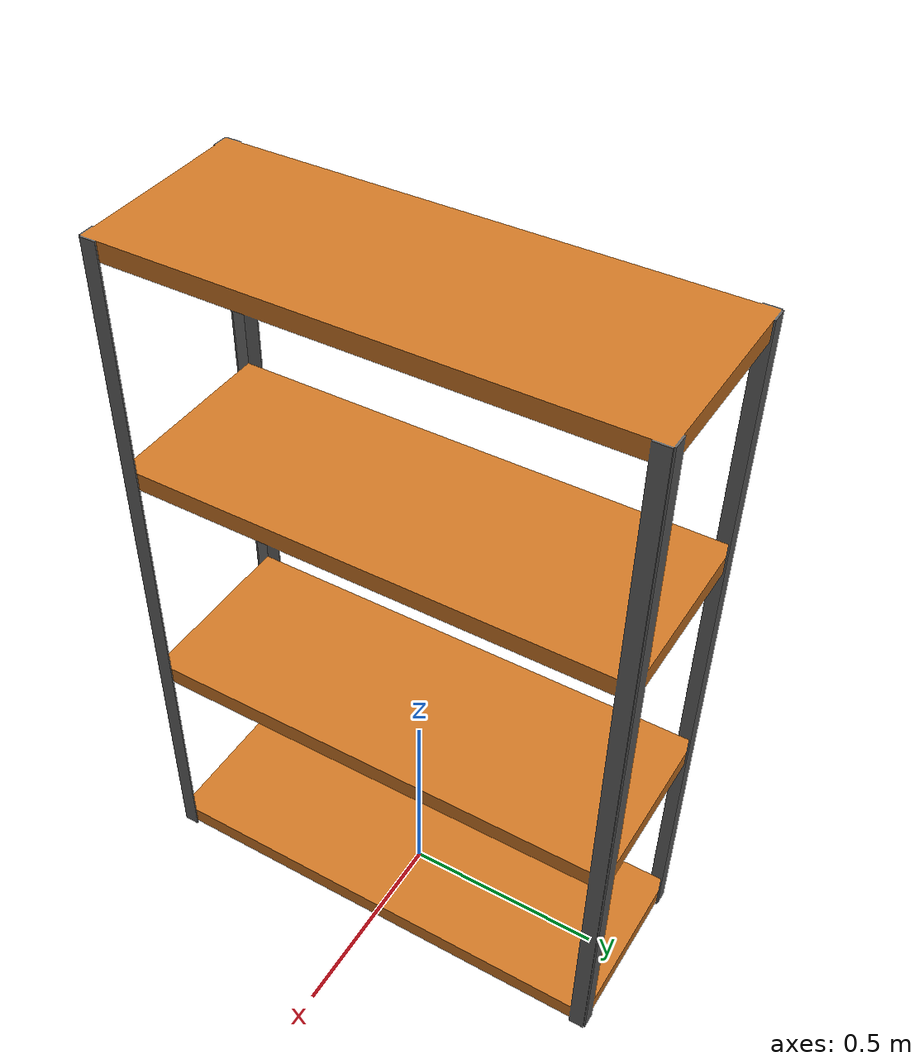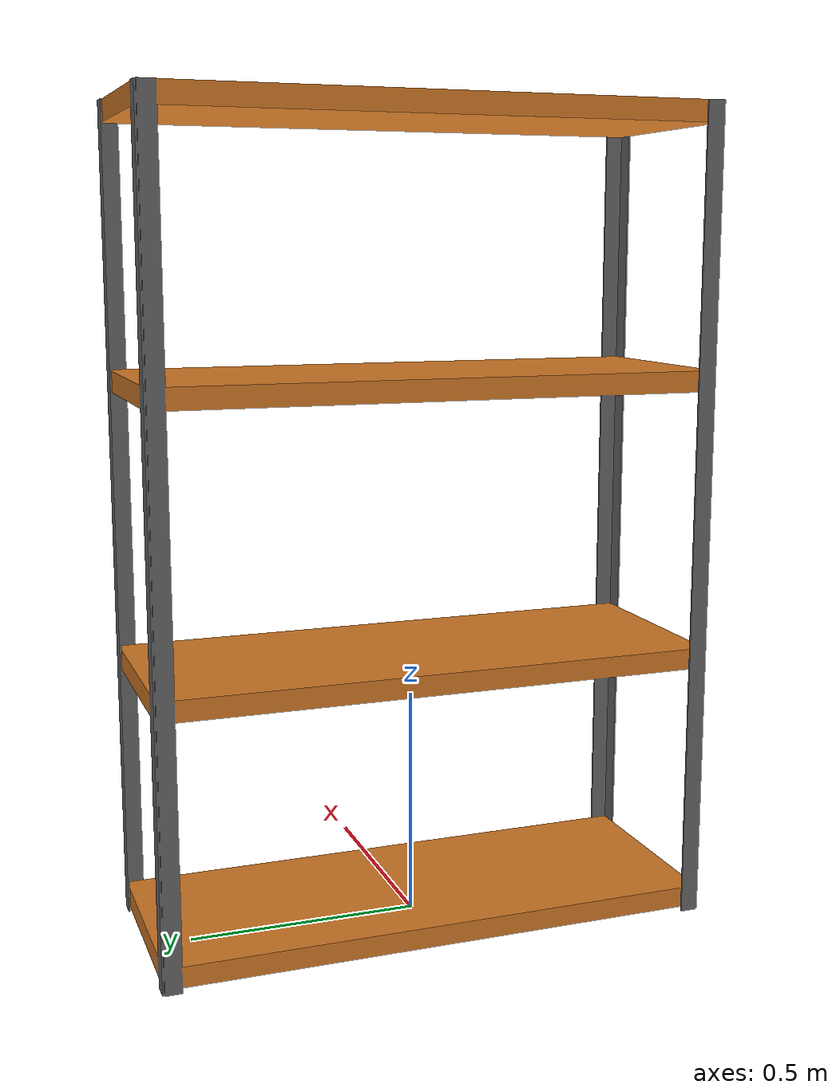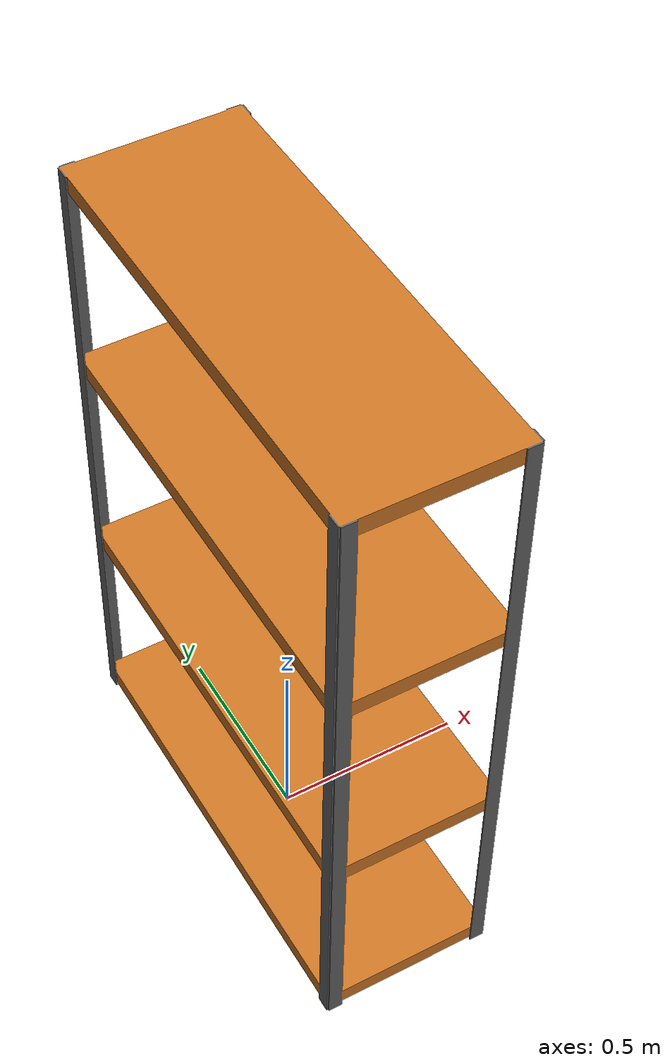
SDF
<?xml version="1.0" ?>
<sdf version="1.5">
  <model name="warehouse_shelves">
    <static>true</static>
    <link name="warehouse_shelves">
      <collision name="warehouse_shelves">
        <pose>0 0 0 0 0 0</pose>
        <geometry>
          <mesh>
            <uri>model://warehouse_shelves/meshes/model.dae</uri>
          </mesh>
        </geometry>
      </collision>

      <visual name="warehouse_shelves">
      <cast_shadows>true</cast_shadows>
        <geometry>
          <mesh>
          <uri>model://warehouse_shelves/meshes/model.dae</uri>
        </mesh>
        </geometry>
      </visual>
    </link>
  </model>
</sdf>
